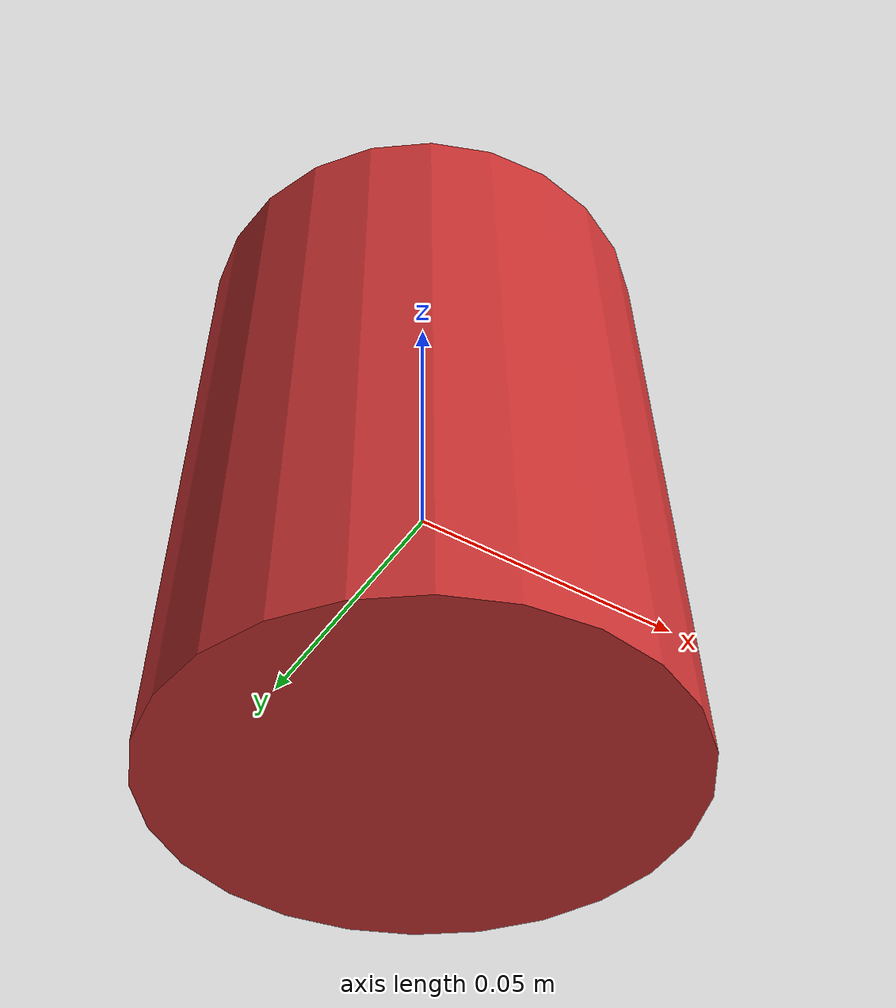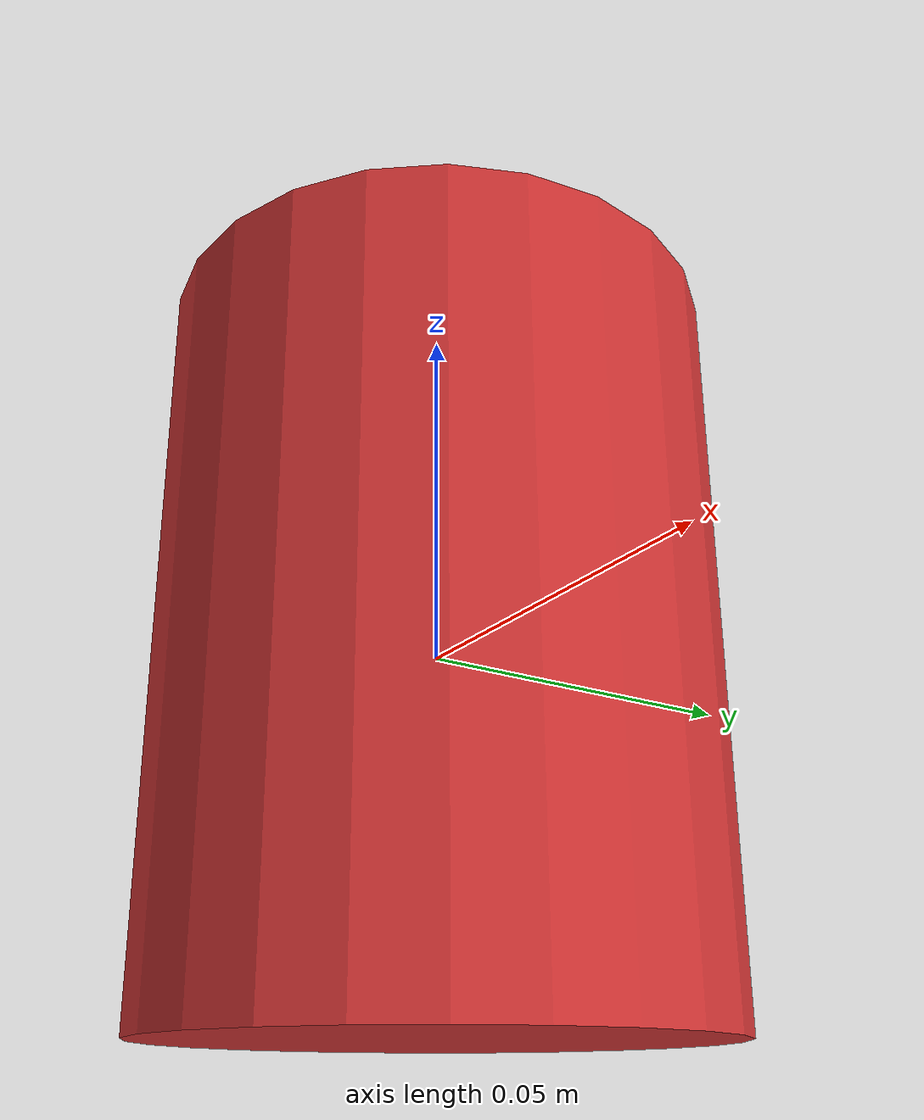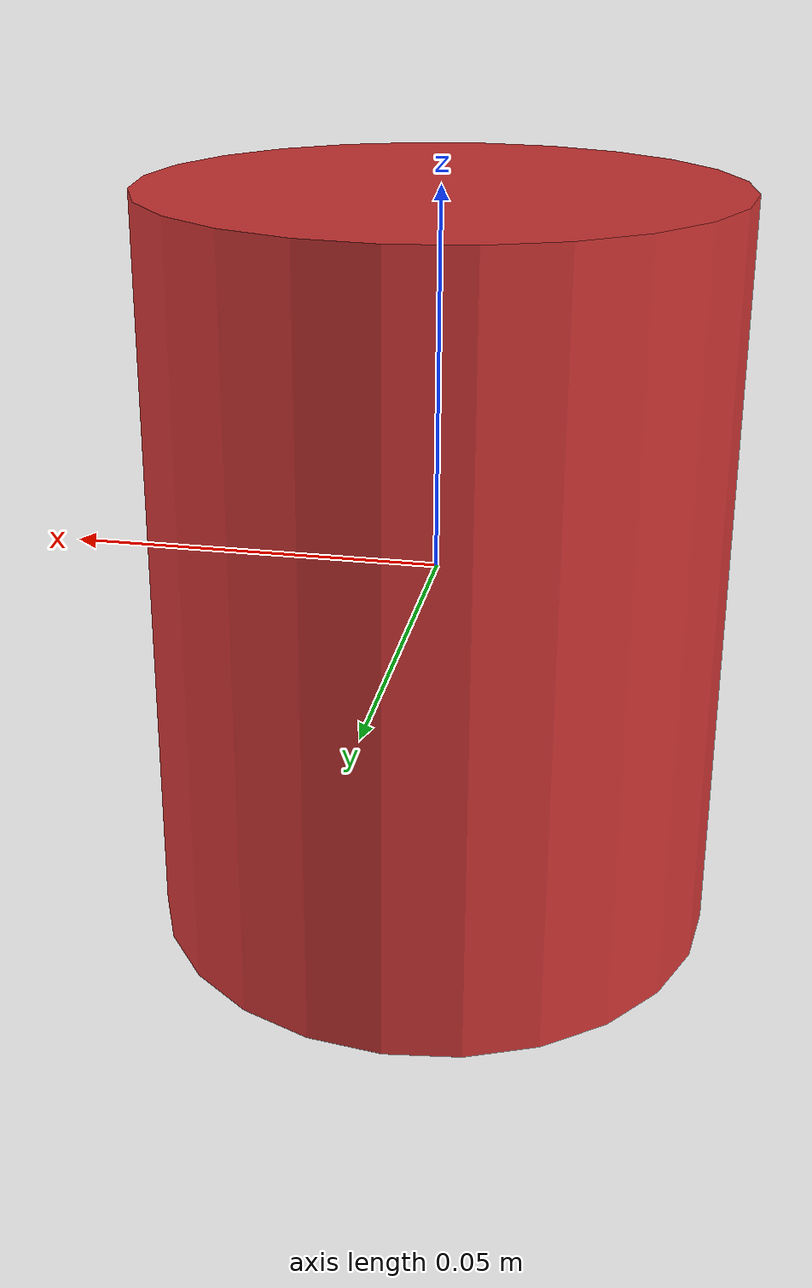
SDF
<?xml version="1.0" ?>
<sdf version="1.5">
  <model name="soup_can">
    <link name="link">
      <inertial>
        <mass>0.400</mass>
        <!-- cylinder: r=0.038m, h=0.100m -->
        <inertia>
          <ixx>0.000622</ixx><ixy>0</ixy><ixz>0</ixz>
          <iyy>0.000622</iyy><iyz>0</iyz><izz>0.000289</izz>
        </inertia>
      </inertial>
      <collision name="collision">
        <geometry><cylinder><radius>0.038</radius><length>0.100</length></cylinder></geometry>
              <surface>
          <friction>
            <ode>
              <mu>0.5</mu>
              <mu2>0.5</mu2>
            </ode>
            <torsional>
              <coefficient>0.5</coefficient>
              <surface_radius>0.01</surface_radius>
            </torsional>
          </friction>
          <contact>
            <ode>
              <kp>1e6</kp>
              <kd>50</kd>
              <min_depth>0.001</min_depth>
              <max_vel>0.01</max_vel>
            </ode>
          </contact>
        </surface>
      </collision>
      <visual name="visual">
        <geometry><cylinder><radius>0.038</radius><length>0.100</length></cylinder></geometry>
        <material>
          <ambient>0.8 0.2 0.2 1</ambient><diffuse>0.8 0.2 0.2 1</diffuse>
        </material>
      </visual>
    </link>
  </model>
</sdf>
